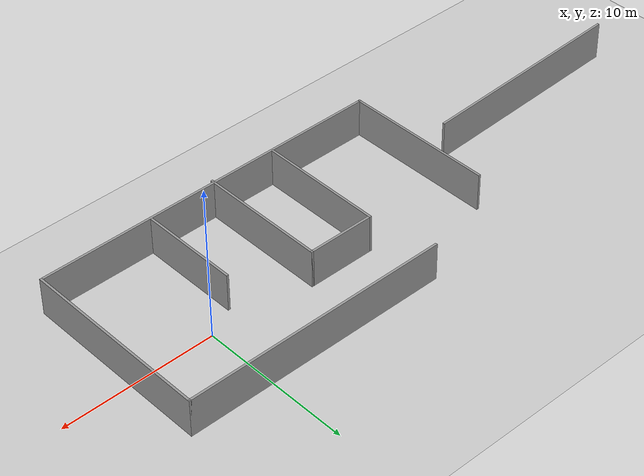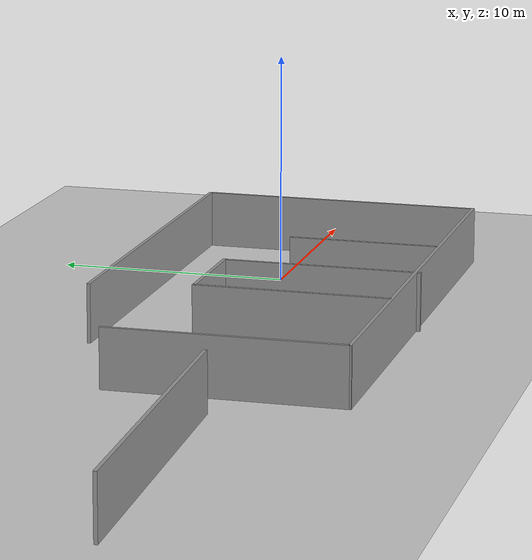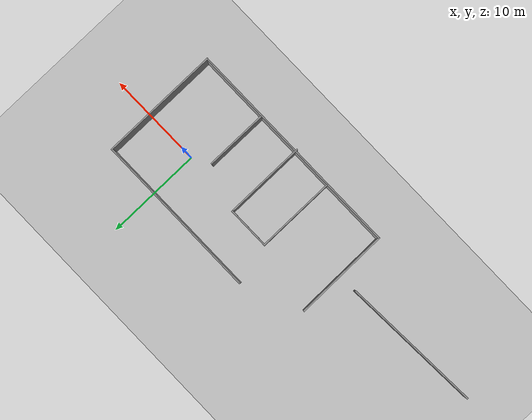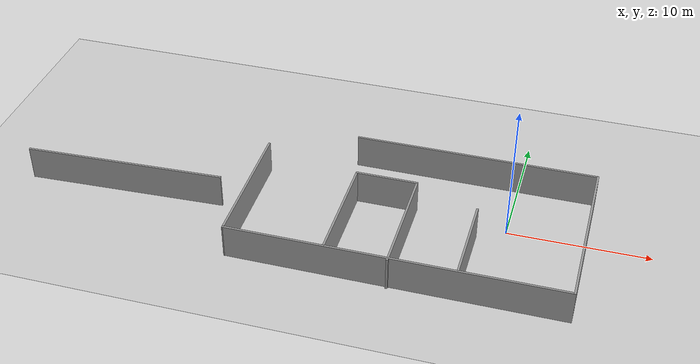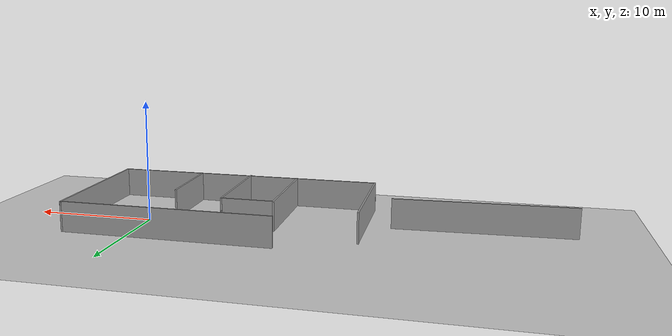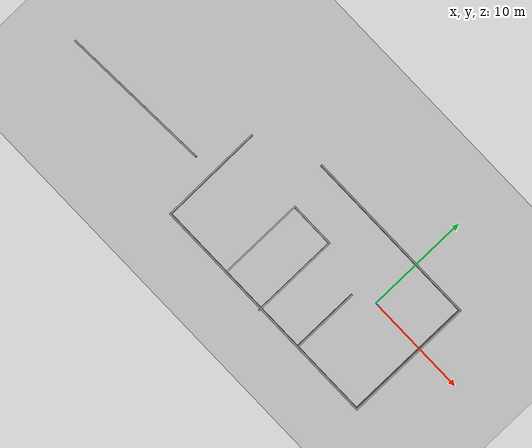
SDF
<sdf version="1.6">
 <world name="default">
  <light name="sun" type="directional">
   <pose>0 0 10 0 -0 0</pose>
   <diffuse>0.8 0.8 0.8 1</diffuse>
   <specular>0.1 0.1 0.1 1</specular>
   <attenuation>
    <range>1000</range>
    <constant>0.9</constant>
    <linear>0.01</linear>
    <quadratic>0.001</quadratic>
   </attenuation>
   <direction>-0.5 0.5 -1</direction>
  </light>
  <model name="ground_plane">
   <static>1</static>
   <link name="link">
    <collision name="collision">
     <geometry><plane><normal>0 0 1</normal><size>100 100</size></plane></geometry>
     <surface><friction><ode><mu>100</mu><mu2>50</mu2></ode></friction></surface>
    </collision>
    <visual name="visual">
     <cast_shadows>0</cast_shadows>
     <geometry><plane><normal>0 0 1</normal><size>100 100</size></plane></geometry>
     <material>
      <script><uri>file://media/materials/scripts/gazebo.material</uri><name>Gazebo/Grey</name></script>
     </material>
    </visual>
   </link>
  </model>
  <gravity>0 0 -9.8</gravity>
  <magnetic_field>6e-06 2.3e-05 -4.2e-05</magnetic_field>
  <atmosphere type="adiabatic"/>
  <physics name="default_physics" default="0" type="ode">
   <max_step_size>0.001</max_step_size>
   <real_time_factor>1</real_time_factor>
   <real_time_update_rate>1000</real_time_update_rate>
  </physics>
  <scene><ambient>0.4 0.4 0.4 1</ambient><background>0.7 0.7 0.7 1</background><shadows>1</shadows></scene>
  <spherical_coordinates>
   <surface_model>EARTH_WGS84</surface_model>
   <latitude_deg>0</latitude_deg>
   <longitude_deg>0</longitude_deg>
   <elevation>0</elevation>
   <heading_deg>0</heading_deg>
  </spherical_coordinates>
  <model name="Untitled">
   <pose>-14.4688 -1.42104 0 0 -0 0</pose>
   <link name="Wall_23">
    <collision name="Wall_23_Collision">
     <geometry><box><size>17.5 0.15 2.5</size></box></geometry>
     <pose>0 0 1.25 0 -0 0</pose>
    </collision>
    <visual name="Wall_23_Visual">
     <pose>0 0 1.25 0 -0 0</pose>
     <geometry><box><size>17.5 0.15 2.5</size></box></geometry>
     <material>
      <script><uri>file://media/materials/scripts/gazebo.material</uri><name>Gazebo/Grey</name></script>
      <ambient>1 1 1 1</ambient>
     </material>
    </visual>
    <pose>11.2332 6.25402 0 0 -0 0</pose>
   </link>
   <link name="Wall_24">
    <collision name="Wall_24_Collision">
     <geometry><box><size>12.5 0.15 2.5</size></box></geometry>
     <pose>0 0 1.25 0 -0 0</pose>
    </collision>
    <visual name="Wall_24_Visual">
     <pose>0 0 1.25 0 -0 0</pose>
     <geometry><box><size>12.5 0.15 2.5</size></box></geometry>
     <material>
      <script><uri>file://media/materials/scripts/gazebo.material</uri><name>Gazebo/Grey</name></script>
      <ambient>1 1 1 1</ambient>
     </material>
    </visual>
    <pose>19.9082 0.07902 0 0 0 -1.5708</pose>
   </link>
   <link name="Wall_25">
    <collision name="Wall_25_Collision">
     <geometry><box><size>23.5 0.15 2.5</size></box></geometry>
     <pose>0 0 1.25 0 -0 0</pose>
    </collision>
    <visual name="Wall_25_Visual">
     <pose>0 0 1.25 0 -0 0</pose>
     <geometry><box><size>23.5 0.15 2.5</size></box></geometry>
     <material>
      <script><uri>file://media/materials/scripts/gazebo.material</uri><name>Gazebo/Grey</name></script>
      <ambient>1 1 1 1</ambient>
     </material>
    </visual>
    <pose>8.23316 -6.09598 0 0 -0 3.14159</pose>
   </link>
   <link name="Wall_26">
    <collision name="Wall_26_Collision">
     <geometry><box><size>9.91216 0.15 2.5</size></box></geometry>
     <pose>0 0 1.25 0 -0 0</pose>
    </collision>
    <visual name="Wall_26_Visual">
     <pose>0 0 1.25 0 -0 0</pose>
     <geometry><box><size>9.91216 0.15 2.5</size></box></geometry>
     <material>
      <script><uri>file://media/materials/scripts/gazebo.material</uri><name>Gazebo/Grey</name></script>
      <ambient>1 1 1 1</ambient>
     </material>
    </visual>
    <pose>-3.4823 -1.21507 0 0 -0 1.57909</pose>
   </link>
   <link name="Wall_29">
    <collision name="Wall_29_Collision">
     <geometry><box><size>14.5044 0.15 2.5</size></box></geometry>
     <pose>0 0 1.25 0 -0 0</pose>
    </collision>
    <visual name="Wall_29_Visual">
     <pose>0 0 1.25 0 -0 0</pose>
     <geometry><box><size>14.5044 0.15 2.5</size></box></geometry>
     <material>
      <script><uri>file://media/materials/scripts/gazebo.material</uri><name>Gazebo/Grey</name></script>
      <ambient>1 1 1 1</ambient>
     </material>
    </visual>
    <pose>-12.7346 -1.3956 0 0 -0 0.0438</pose>
   </link>
   <link name="Wall_33">
    <collision name="Wall_33_Collision">
     <geometry><box><size>8.25 0.15 2.5</size></box></geometry>
     <pose>0 0 1.25 0 -0 0</pose>
    </collision>
    <visual name="Wall_33_Visual">
     <pose>0 0 1.25 0 -0 0</pose>
     <geometry><box><size>8.25 0.15 2.5</size></box></geometry>
     <material>
      <script><uri>file://media/materials/scripts/gazebo.material</uri><name>Gazebo/Grey</name></script>
      <ambient>1 1 1 1</ambient>
     </material>
    </visual>
    <pose>3.52909 -1.95402 0 0 -0 1.5708</pose>
   </link>
   <link name="Wall_34">
    <collision name="Wall_34_Collision">
     <geometry><box><size>4.5 0.15 2.5</size></box></geometry>
     <pose>0 0 1.25 0 -0 0</pose>
    </collision>
    <visual name="Wall_34_Visual">
     <pose>0 0 1.25 0 -0 0</pose>
     <geometry><box><size>4.5 0.15 2.5</size></box></geometry>
     <material>
      <script><uri>file://media/materials/scripts/gazebo.material</uri><name>Gazebo/Grey</name></script>
      <ambient>1 1 1 1</ambient>
     </material>
    </visual>
    <pose>5.70409 2.09598 0 0 -0 0</pose>
   </link>
   <link name="Wall_35">
    <collision name="Wall_35_Collision">
     <geometry><box><size>8.5 0.15 2.5</size></box></geometry>
     <pose>0 0 1.25 0 -0 0</pose>
    </collision>
    <visual name="Wall_35_Visual">
     <pose>0 0 1.25 0 -0 0</pose>
     <geometry><box><size>8.5 0.15 2.5</size></box></geometry>
     <material>
      <script><uri>file://media/materials/scripts/gazebo.material</uri><name>Gazebo/Grey</name></script>
      <ambient>1 1 1 1</ambient>
     </material>
    </visual>
    <pose>7.87909 -2.07902 0 0 0 -1.5708</pose>
   </link>
   <link name="Wall_37">
    <collision name="Wall_37_Collision">
     <geometry><box><size>6.5 0.15 2.5</size></box></geometry>
     <pose>0 0 1.25 0 -0 0</pose>
    </collision>
    <visual name="Wall_37_Visual">
     <pose>0 0 1.25 0 -0 0</pose>
     <geometry><box><size>6.5 0.15 2.5</size></box></geometry>
     <material>
      <script><uri>file://media/materials/scripts/gazebo.material</uri><name>Gazebo/Grey</name></script>
      <ambient>1 1 1 1</ambient>
     </material>
    </visual>
    <pose>12.4698 -2.78857 0 0 -0 1.5708</pose>
   </link>
   <static>1</static>
  </model>
 </world>
</sdf>
